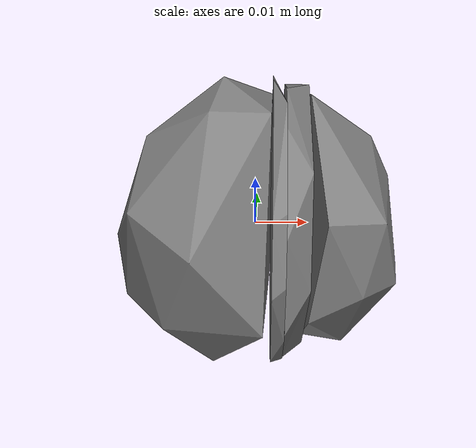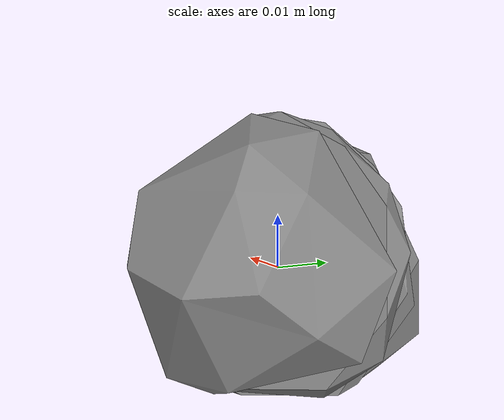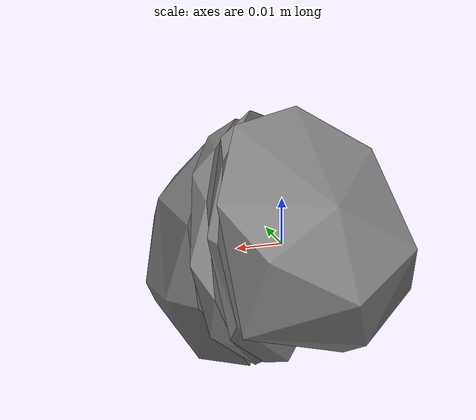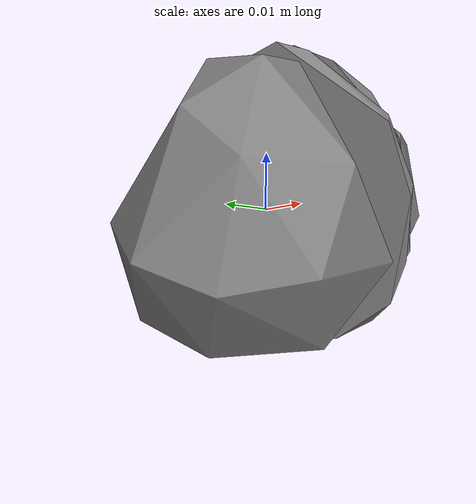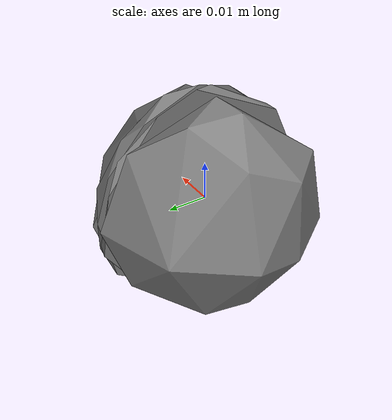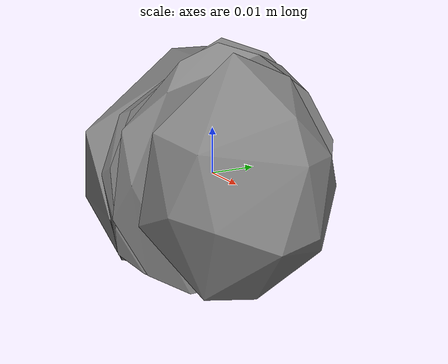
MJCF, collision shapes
<mujoco model="plum">
  <compiler angle="radian" />

  <asset>
    <mesh name="plum_visual_mesh" file="plum/textured.obj" />
    <mesh name="plum_collision_mesh_0" file="plum/textured_coacd_0.stl" />
    <mesh name="plum_collision_mesh_1" file="plum/textured_coacd_1.stl" />
    <mesh name="plum_collision_mesh_2" file="plum/textured_coacd_2.stl" />
    <mesh name="plum_collision_mesh_3" file="plum/textured_coacd_3.stl" />
    <texture name="plum_texture" type="2d" file="plum/texture_map.png" />
    <material name="plum_material" texture="plum_texture" />
  </asset>

  <worldbody>
    <body name="plum" pos="0 0 0" euler="0 0 0">
      <freejoint name="plum_joint" />
      <geom name="plum_visual_geom" type="mesh" mesh="plum_visual_mesh" material="plum_material" pos="0.007742611303817823 -0.01949223166858234 -0.023720337525360752" euler="0 0 0" contype="0" conaffinity="0" group="0" />
      <geom name="plum_collision_geom_0" type="mesh" mesh="plum_collision_mesh_0" pos="0.007742611303817823 -0.01949223166858234 -0.023720337525360752" euler="0 0 0" contype="1" conaffinity="1" group="3" />
      <geom name="plum_collision_geom_1" type="mesh" mesh="plum_collision_mesh_1" pos="0.007742611303817823 -0.01949223166858234 -0.023720337525360752" euler="0 0 0" contype="1" conaffinity="1" group="3" />
      <geom name="plum_collision_geom_2" type="mesh" mesh="plum_collision_mesh_2" pos="0.007742611303817823 -0.01949223166858234 -0.023720337525360752" euler="0 0 0" contype="1" conaffinity="1" group="3" />
      <geom name="plum_collision_geom_3" type="mesh" mesh="plum_collision_mesh_3" pos="0.007742611303817823 -0.01949223166858234 -0.023720337525360752" euler="0 0 0" contype="1" conaffinity="1" group="3" />
      <inertial pos="0 0 0" euler="0 0 0" mass="0.025" diaginertia="0.001 0.001 0.001" />
    </body>
  </worldbody>
</mujoco>
